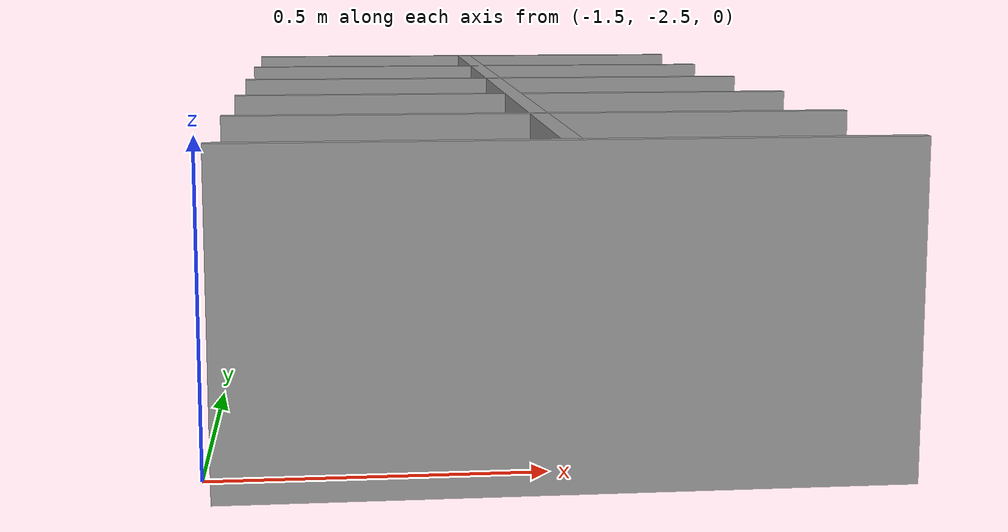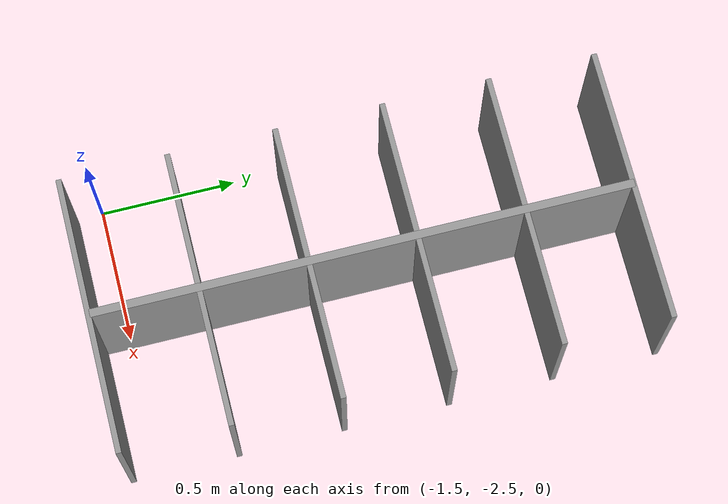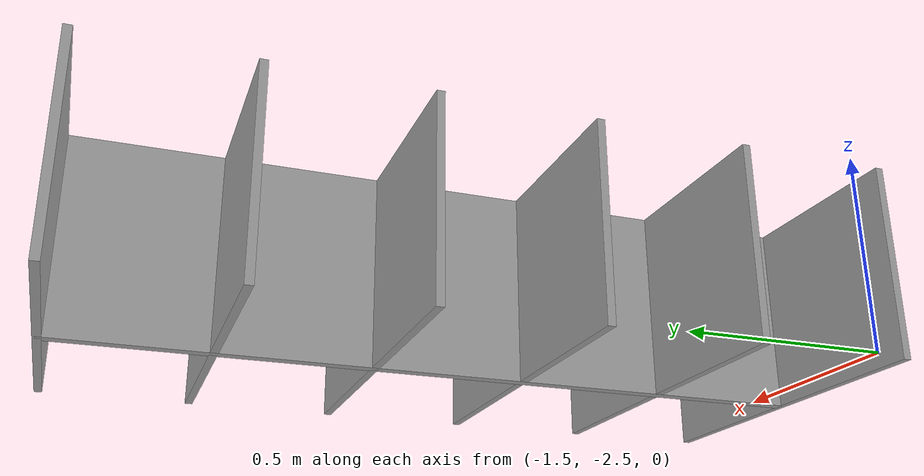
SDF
<?xml version='1.0'?>
<sdf version='1.6'>
  <model name='lanes'>
    <pose frame=''>-0.981 -1.631 0 0 -0 0</pose>
    <link name='Wall_0'>
      <collision name='Wall_0_Collision'>
        <geometry>
          <box>
            <size>1 0.02 0.5</size>
          </box>
        </geometry>
        <pose frame=''>0 0 0.25 0 -0 0</pose>
      </collision>
      <visual name='Wall_0_Visual'>
        <pose frame=''>0 0 0.25 0 -0 0</pose>
        <geometry>
          <box>
            <size>1 0.02 0.5</size>
          </box>
        </geometry>
        <material>
          <script>
            <uri>file://media/materials/scripts/gazebo.material</uri>
            <name>Gazebo/Grey</name>
          </script>
          <ambient>1 1 1 1</ambient>
        </material>
        <meta>
          <layer>0</layer>
        </meta>
      </visual>
      <pose frame=''>-0 -0.97 0 0 -0 0</pose>
    </link>
    <link name='Wall_12'>
      <collision name='Wall_12_Collision'>
        <geometry>
          <box>
            <size>1 0.02 0.5</size>
          </box>
        </geometry>
        <pose frame=''>0 0 0.25 0 -0 0</pose>
      </collision>
      <visual name='Wall_12_Visual'>
        <pose frame=''>0 0 0.25 0 -0 0</pose>
        <geometry>
          <box>
            <size>1 0.02 0.5</size>
          </box>
        </geometry>
        <material>
          <script>
            <uri>file://media/materials/scripts/gazebo.material</uri>
            <name>Gazebo/Grey</name>
          </script>
          <ambient>1 1 1 1</ambient>
        </material>
        <meta>
          <layer>0</layer>
        </meta>
      </visual>
      <pose frame=''>-0 -0.582 0 0 -0 0</pose>
    </link>
    <link name='Wall_14'>
      <collision name='Wall_14_Collision'>
        <geometry>
          <box>
            <size>1 0.02 0.5</size>
          </box>
        </geometry>
        <pose frame=''>0 0 0.25 0 -0 0</pose>
      </collision>
      <visual name='Wall_14_Visual'>
        <pose frame=''>0 0 0.25 0 -0 0</pose>
        <geometry>
          <box>
            <size>1 0.02 0.5</size>
          </box>
        </geometry>
        <material>
          <script>
            <uri>file://media/materials/scripts/gazebo.material</uri>
            <name>Gazebo/Grey</name>
          </script>
          <ambient>1 1 1 1</ambient>
        </material>
        <meta>
          <layer>0</layer>
        </meta>
      </visual>
      <pose frame=''>-0 -0.194 0 0 -0 0</pose>
    </link>
    <link name='Wall_16'>
      <collision name='Wall_16_Collision'>
        <geometry>
          <box>
            <size>1 0.02 0.5</size>
          </box>
        </geometry>
        <pose frame=''>0 0 0.25 0 -0 0</pose>
      </collision>
      <visual name='Wall_16_Visual'>
        <pose frame=''>0 0 0.25 0 -0 0</pose>
        <geometry>
          <box>
            <size>1 0.02 0.5</size>
          </box>
        </geometry>
        <material>
          <script>
            <uri>file://media/materials/scripts/gazebo.material</uri>
            <name>Gazebo/Grey</name>
          </script>
          <ambient>1 1 1 1</ambient>
        </material>
        <meta>
          <layer>0</layer>
        </meta>
      </visual>
      <pose frame=''>-0 0.194 0 0 -0 0</pose>
    </link>
    <link name='Wall_20'>
      <collision name='Wall_20_Collision'>
        <geometry>
          <box>
            <size>1 0.02 0.5</size>
          </box>
        </geometry>
        <pose frame=''>0 0 0.25 0 -0 0</pose>
      </collision>
      <visual name='Wall_20_Visual'>
        <pose frame=''>0 0 0.25 0 -0 0</pose>
        <geometry>
          <box>
            <size>1 0.02 0.5</size>
          </box>
        </geometry>
        <material>
          <script>
            <uri>file://media/materials/scripts/gazebo.material</uri>
            <name>Gazebo/Grey</name>
          </script>
          <ambient>1 1 1 1</ambient>
        </material>
        <meta>
          <layer>0</layer>
        </meta>
      </visual>
      <pose frame=''>-0 0.582 0 0 -0 0</pose>
    </link>
    <link name='Wall_22'>
      <collision name='Wall_22_Collision'>
        <geometry>
          <box>
            <size>1 0.02 0.5</size>
          </box>
        </geometry>
        <pose frame=''>0 0 0.25 0 -0 0</pose>
      </collision>
      <visual name='Wall_22_Visual'>
        <pose frame=''>0 0 0.25 0 -0 0</pose>
        <geometry>
          <box>
            <size>1 0.02 0.5</size>
          </box>
        </geometry>
        <material>
          <script>
            <uri>file://media/materials/scripts/gazebo.material</uri>
            <name>Gazebo/Grey</name>
          </script>
          <ambient>1 1 1 1</ambient>
        </material>
        <meta>
          <layer>0</layer>
        </meta>
      </visual>
      <pose frame=''>-0 0.97 0 0 -0 0</pose>
    </link>
    <link name='Wall_24'>
      <collision name='Wall_24_Collision'>
        <geometry>
          <box>
            <size>1.94 0.03 0.5</size>
          </box>
        </geometry>
        <pose frame=''>0 0 0.25 0 -0 0</pose>
      </collision>
      <visual name='Wall_24_Visual'>
        <pose frame=''>0 0 0.25 0 -0 0</pose>
        <geometry>
          <box>
            <size>1.94 0.03 0.5</size>
          </box>
        </geometry>
        <material>
          <script>
            <uri>file://media/materials/scripts/gazebo.material</uri>
            <name>Gazebo/Grey</name>
          </script>
          <ambient>1 1 1 1</ambient>
        </material>
        <meta>
          <layer>0</layer>
        </meta>
      </visual>
      <pose frame=''>-0 0.005 0 0 -0 1.5708</pose>
    </link>
    <static>1</static>
  </model>
</sdf>
